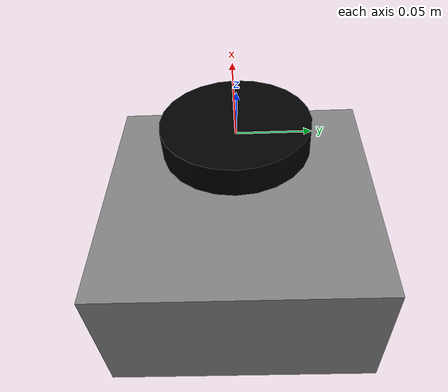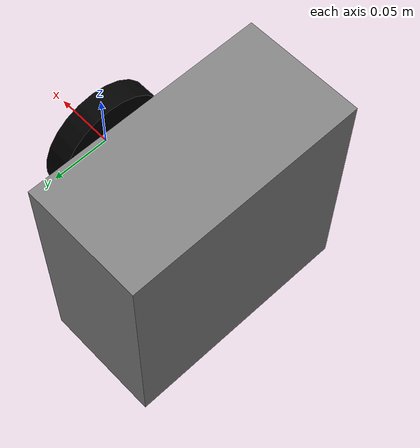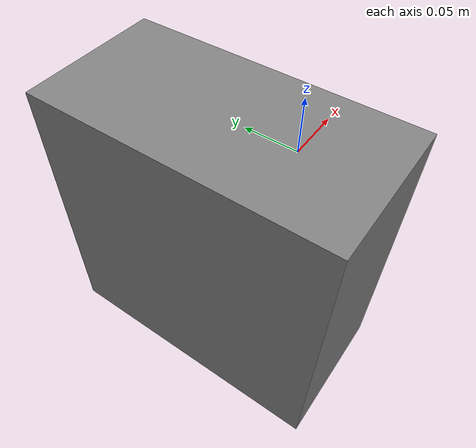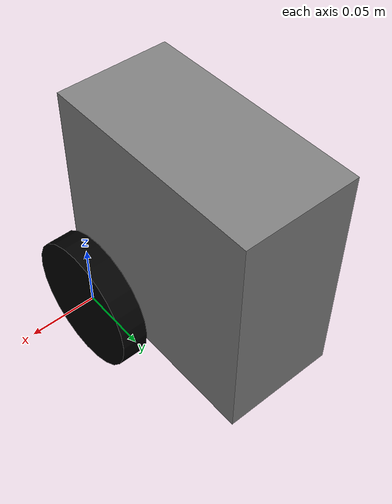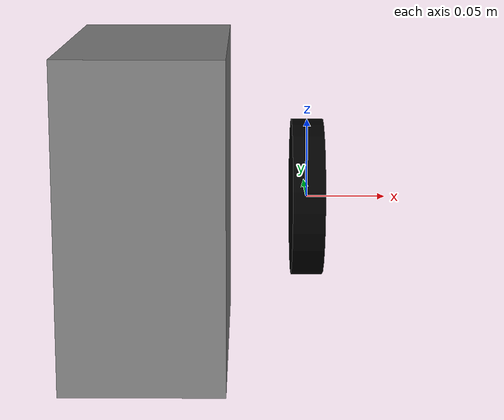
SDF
<?xml version="1.0"?>
<sdf version="1.9">
    <model name="cam1">
        <static>1</static>
        <link name="camlink">
            <pose>0 0 0 0 0 0</pose>
            <visual name="body">
                <pose>-0.1 0 0 0 0 0</pose>
                <geometry>
                    <box>
                        <size>0.1 0.2 0.2</size>
                    </box>
                </geometry>
                <material>
                    <ambient>0.5 0.5 0.5 1</ambient>
                    <diffuse>0.5 0.5 0.5 1</diffuse>
                    <specular>0.5 0.5 0.5 1</specular>
                    <emissive>0 0 0 1</emissive>
                </material>
            </visual>
            <visual name="lens">
                <pose degrees="true">0 0 0 0 90 0</pose>
                <geometry>
                    <cylinder>
                        <radius>0.05</radius>
                        <length>0.02</length>
                    </cylinder>
                </geometry>
                <material>
                    <ambient>0 0 0 1</ambient>
                    <diffuse>0 0 0 1</diffuse>
                    <specular>0 0 0 1</specular>
                    <emissive>0 0 0 1</emissive>
                </material>
            </visual>

            <sensor name="cam1" type="camera">
                <camera>
                    <horizontal_fov>1.047</horizontal_fov>
                    <image>
                        <width>640</width>
                        <height>480</height>
                    </image>
                    <clip>
                        <near>0.1</near>
                        <far>100</far>
                    </clip>
                </camera>
                <always_on>1</always_on>
                <update_rate>30</update_rate>
                <visualize>true</visualize>
                <topic>cam1</topic>
            </sensor>
        </link>
    </model>
</sdf>
